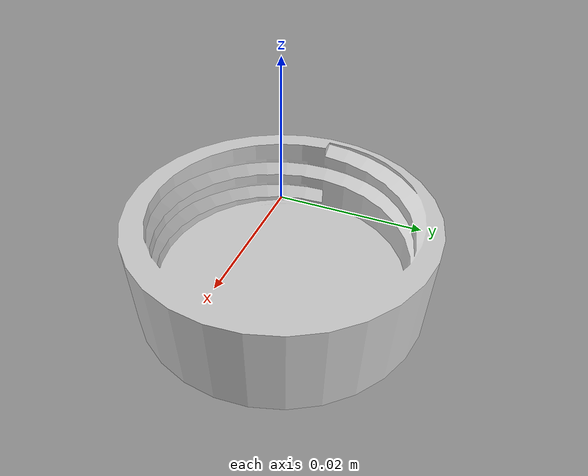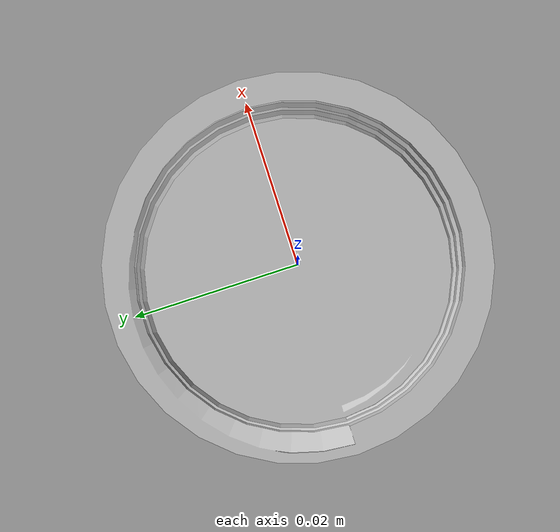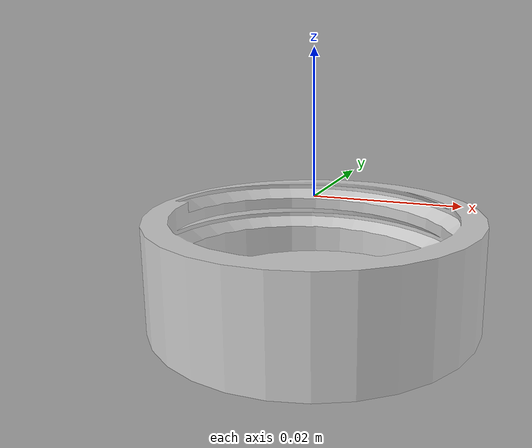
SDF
<?xml version="1.0" ?>
<sdf version="1.6">
  <model name="bottle_cap">
    <link name="link">
      <inertial>
        <mass>0.5</mass>  <!-- 设置质量（单位：千克）-->
      </inertial>
      <visual name="visual">
        <geometry>
          <mesh>
            <uri>model://bottle_cap/meshes/bottle_cap.dae</uri>
          </mesh>
        </geometry>
      </visual>
      <collision name="collision">
        <geometry>
          <mesh>
            <uri>model://bottle_cap/meshes/bottle_cap.dae</uri>
          </mesh>
        </geometry>
      </collision>
    </link>
  </model>
</sdf>
